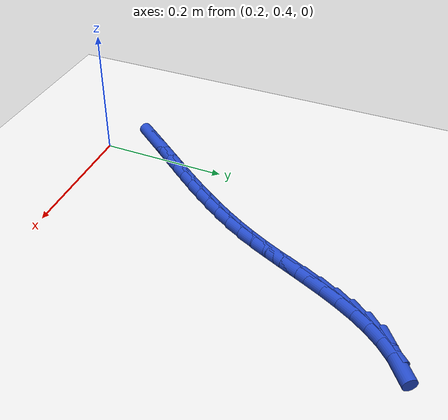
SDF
<sdf version="1.6">
 <world name="default">
  <model name="ground_plane">
   <static>1</static>
   <link name="link">
    <collision name="collision">
     <geometry><plane><normal>0 0 1</normal><size>100 100</size></plane></geometry>
     <surface><friction><ode><mu>100</mu><mu2>50</mu2></ode></friction></surface>
    </collision>
    <visual name="visual">
     <cast_shadows>0</cast_shadows>
     <geometry><plane><normal>0 0 1</normal><size>100 100</size></plane></geometry>
     <material>
      <script><uri>file://media/materials/scripts/gazebo.material</uri><name>Gazebo/WhiteGlow</name></script>
     </material>
    </visual>
   </link>
  </model>
  <model name="line">
   <link name="link_20">
    <pose>0.16559389315983603 0.46943341794233256 0.01 0 1.57 0.907934130518761</pose>
    <collision name="collision">
     <geometry><cylinder><radius>0.01</radius><length>0.08</length></cylinder></geometry>
    </collision>
    <visual name="visual">
     <material>
      <script><name>Gazebo/Blue</name><uri>file://media/materials/scripts/gazebo.material</uri></script>
     </material>
     <geometry><cylinder><radius>0.01</radius><length>0.08</length></cylinder></geometry>
    </visual>
   </link>
   <link name="link_21">
    <pose>0.18149968479023249 0.48980713927991315 0.01 0 1.57 0.9036760813142651</pose>
    <collision name="collision">
     <geometry><cylinder><radius>0.01</radius><length>0.08</length></cylinder></geometry>
    </collision>
    <visual name="visual">
     <material>
      <script><name>Gazebo/Blue</name><uri>file://media/materials/scripts/gazebo.material</uri></script>
     </material>
     <geometry><cylinder><radius>0.01</radius><length>0.08</length></cylinder></geometry>
    </visual>
   </link>
   <link name="link_22">
    <pose>0.19744685749330892 0.5100555233052114 0.01 0 1.57 0.9035823621691371</pose>
    <collision name="collision">
     <geometry><cylinder><radius>0.01</radius><length>0.08</length></cylinder></geometry>
    </collision>
    <visual name="visual">
     <material>
      <script><name>Gazebo/Blue</name><uri>file://media/materials/scripts/gazebo.material</uri></script>
     </material>
     <geometry><cylinder><radius>0.01</radius><length>0.08</length></cylinder></geometry>
    </visual>
   </link>
   <link name="link_23">
    <pose>0.2133233122628068 0.53021022935071 0.01 0 1.57 0.9077101315692119</pose>
    <collision name="collision">
     <geometry><cylinder><radius>0.01</radius><length>0.08</length></cylinder></geometry>
    </collision>
    <visual name="visual">
     <material>
      <script><name>Gazebo/Blue</name><uri>file://media/materials/scripts/gazebo.material</uri></script>
     </material>
     <geometry><cylinder><radius>0.01</radius><length>0.08</length></cylinder></geometry>
    </visual>
   </link>
   <link name="link_24">
    <pose>0.22901695977784772 0.550302935023541 0.01 0 1.57 0.9163340492836096</pose>
    <collision name="collision">
     <geometry><cylinder><radius>0.01</radius><length>0.08</length></cylinder></geometry>
    </collision>
    <visual name="visual">
     <material>
      <script><name>Gazebo/Blue</name><uri>file://media/materials/scripts/gazebo.material</uri></script>
     </material>
     <geometry><cylinder><radius>0.01</radius><length>0.08</length></cylinder></geometry>
    </visual>
   </link>
   <link name="link_25">
    <pose>0.24442798814996167 0.5703884833366913 0.01 0 1.57 0.9300379514819116</pose>
    <collision name="collision">
     <geometry><cylinder><radius>0.01</radius><length>0.08</length></cylinder></geometry>
    </collision>
    <visual name="visual">
     <material>
      <script><name>Gazebo/Blue</name><uri>file://media/materials/scripts/gazebo.material</uri></script>
     </material>
     <geometry><cylinder><radius>0.01</radius><length>0.08</length></cylinder></geometry>
    </visual>
   </link>
   <link name="link_26">
    <pose>0.2594928864295115 0.5905902109387106 0.01 0 1.57 0.9488639191968582</pose>
    <collision name="collision">
     <geometry><cylinder><radius>0.01</radius><length>0.08</length></cylinder></geometry>
    </collision>
    <visual name="visual">
     <material>
      <script><name>Gazebo/Blue</name><uri>file://media/materials/scripts/gazebo.material</uri></script>
     </material>
     <geometry><cylinder><radius>0.01</radius><length>0.08</length></cylinder></geometry>
    </visual>
   </link>
   <link name="link_27">
    <pose>0.2741548206432137 0.611044052785512 0.01 0 1.57 0.9726475083411117</pose>
    <collision name="collision">
     <geometry><cylinder><radius>0.01</radius><length>0.08</length></cylinder></geometry>
    </collision>
    <visual name="visual">
     <material>
      <script><name>Gazebo/Blue</name><uri>file://media/materials/scripts/gazebo.material</uri></script>
     </material>
     <geometry><cylinder><radius>0.01</radius><length>0.08</length></cylinder></geometry>
    </visual>
   </link>
   <link name="link_28">
    <pose>0.2883569568177839 0.6318859438330072 0.01 0 1.57 1.0011065653233218</pose>
    <collision name="collision">
     <geometry><cylinder><radius>0.01</radius><length>0.08</length></cylinder></geometry>
    </collision>
    <visual name="visual">
     <material>
      <script><name>Gazebo/Blue</name><uri>file://media/materials/scripts/gazebo.material</uri></script>
     </material>
     <geometry><cylinder><radius>0.01</radius><length>0.08</length></cylinder></geometry>
    </visual>
   </link>
   <link name="link_29">
    <pose>0.3020424609799387 0.6532518190371102 0.01 0 1.57 1.0338370995341764</pose>
    <collision name="collision">
     <geometry><cylinder><radius>0.01</radius><length>0.08</length></cylinder></geometry>
    </collision>
    <visual name="visual">
     <material>
      <script><name>Gazebo/Blue</name><uri>file://media/materials/scripts/gazebo.material</uri></script>
     </material>
     <geometry><cylinder><radius>0.01</radius><length>0.08</length></cylinder></geometry>
    </visual>
   </link>
   <link name="link_30">
    <pose>0.315154499156394 0.6752776133537328 0.01 0 1.57 1.070316749736388</pose>
    <collision name="collision">
     <geometry><cylinder><radius>0.01</radius><length>0.08</length></cylinder></geometry>
    </collision>
    <visual name="visual">
     <material>
      <script><name>Gazebo/Blue</name><uri>file://media/materials/scripts/gazebo.material</uri></script>
     </material>
     <geometry><cylinder><radius>0.01</radius><length>0.08</length></cylinder></geometry>
    </visual>
   </link>
   <link name="link_31">
    <pose>0.3276362373738661 0.6980992617387883 0.01 0 1.57 1.1097260973705472</pose>
    <collision name="collision">
     <geometry><cylinder><radius>0.01</radius><length>0.08</length></cylinder></geometry>
    </collision>
    <visual name="visual">
     <material>
      <script><name>Gazebo/Blue</name><uri>file://media/materials/scripts/gazebo.material</uri></script>
     </material>
     <geometry><cylinder><radius>0.01</radius><length>0.08</length></cylinder></geometry>
    </visual>
   </link>
   <link name="link_32">
    <pose>0.3394340397560818 0.7218476916932017 0.01 0 1.57 1.1433270966369884</pose>
    <collision name="collision">
     <geometry><cylinder><radius>0.01</radius><length>0.08</length></cylinder></geometry>
    </collision>
    <visual name="visual">
     <material>
      <script><name>Gazebo/Blue</name><uri>file://media/materials/scripts/gazebo.material</uri></script>
     </material>
     <geometry><cylinder><radius>0.01</radius><length>0.08</length></cylinder></geometry>
    </visual>
   </link>
   <link name="link_33">
    <pose>0.35063463756392504 0.7464340493545889 0.01 0 1.57 1.160743811272451</pose>
    <collision name="collision">
     <geometry><cylinder><radius>0.01</radius><length>0.08</length></cylinder></geometry>
    </collision>
    <visual name="visual">
     <material>
      <script><name>Gazebo/Blue</name><uri>file://media/materials/scripts/gazebo.material</uri></script>
     </material>
     <geometry><cylinder><radius>0.01</radius><length>0.08</length></cylinder></geometry>
    </visual>
   </link>
   <link name="link_34">
    <pose>0.3615169680846194 0.7714685321957914 0.01 0 1.57 1.162131566819311</pose>
    <collision name="collision">
     <geometry><cylinder><radius>0.01</radius><length>0.08</length></cylinder></geometry>
    </collision>
    <visual name="visual">
     <material>
      <script><name>Gazebo/Blue</name><uri>file://media/materials/scripts/gazebo.material</uri></script>
     </material>
     <geometry><cylinder><radius>0.01</radius><length>0.08</length></cylinder></geometry>
    </visual>
   </link>
   <link name="link_35">
    <pose>0.3723738566156871 0.7965395923873043 0.01 0 1.57 1.1475709959268725</pose>
    <collision name="collision">
     <geometry><cylinder><radius>0.01</radius><length>0.08</length></cylinder></geometry>
    </collision>
    <visual name="visual">
     <material>
      <script><name>Gazebo/Blue</name><uri>file://media/materials/scripts/gazebo.material</uri></script>
     </material>
     <geometry><cylinder><radius>0.01</radius><length>0.08</length></cylinder></geometry>
    </visual>
   </link>
   <link name="link_36">
    <pose>0.38349812845465053 0.8212356820996223 0.01 0 1.57 1.1162338055828172</pose>
    <collision name="collision">
     <geometry><cylinder><radius>0.01</radius><length>0.08</length></cylinder></geometry>
    </collision>
    <visual name="visual">
     <material>
      <script><name>Gazebo/Blue</name><uri>file://media/materials/scripts/gazebo.material</uri></script>
     </material>
     <geometry><cylinder><radius>0.01</radius><length>0.08</length></cylinder></geometry>
    </visual>
   </link>
   <link name="link_37">
    <pose>0.3951826088990318 0.8451452535032395 0.01 0 1.57 1.066393140241032</pose>
    <collision name="collision">
     <geometry><cylinder><radius>0.01</radius><length>0.08</length></cylinder></geometry>
    </collision>
    <visual name="visual">
     <material>
      <script><name>Gazebo/Blue</name><uri>file://media/materials/scripts/gazebo.material</uri></script>
     </material>
     <geometry><cylinder><radius>0.01</radius><length>0.08</length></cylinder></geometry>
    </visual>
   </link>
   <link name="link_38">
    <pose>0.40772012324635337 0.8678567587686514 0.01 0 1.57 0.9955164419304721</pose>
    <collision name="collision">
     <geometry><cylinder><radius>0.01</radius><length>0.08</length></cylinder></geometry>
    </collision>
    <visual name="visual">
     <material>
      <script><name>Gazebo/Blue</name><uri>file://media/materials/scripts/gazebo.material</uri></script>
     </material>
     <geometry><cylinder><radius>0.01</radius><length>0.08</length></cylinder></geometry>
    </visual>
   </link>
   <link name="link_39">
    <pose>0.4214034967941377 0.8889586500663526 0.01 0 1.57 0.9006266477489238</pose>
    <collision name="collision">
     <geometry><cylinder><radius>0.01</radius><length>0.08</length></cylinder></geometry>
    </collision>
    <visual name="visual">
     <material>
      <script><name>Gazebo/Blue</name><uri>file://media/materials/scripts/gazebo.material</uri></script>
     </material>
     <geometry><cylinder><radius>0.01</radius><length>0.08</length></cylinder></geometry>
    </visual>
   </link>
   <link name="link_40">
    <pose>0.4365255548399066 0.908039379566837 0.01 0 1.57 0.779262770946666</pose>
    <collision name="collision">
     <geometry><cylinder><radius>0.01</radius><length>0.08</length></cylinder></geometry>
    </collision>
    <visual name="visual">
     <material>
      <script><name>Gazebo/Blue</name><uri>file://media/materials/scripts/gazebo.material</uri></script>
     </material>
     <geometry><cylinder><radius>0.01</radius><length>0.08</length></cylinder></geometry>
    </visual>
   </link>
   <link name="link_41">
    <pose>0.45337912268118297 0.9246873994406006 0.01 0 1.57 0.6313684167849426</pose>
    <collision name="collision">
     <geometry><cylinder><radius>0.01</radius><length>0.08</length></cylinder></geometry>
    </collision>
    <visual name="visual">
     <material>
      <script><name>Gazebo/Blue</name><uri>file://media/materials/scripts/gazebo.material</uri></script>
     </material>
     <geometry><cylinder><radius>0.01</radius><length>0.08</length></cylinder></geometry>
    </visual>
   </link>
  </model>
 </world>
</sdf>
